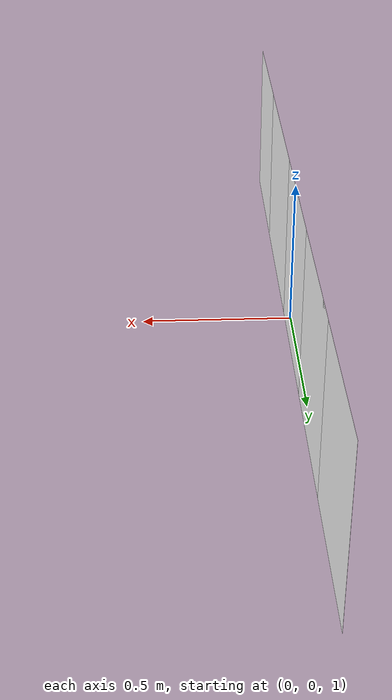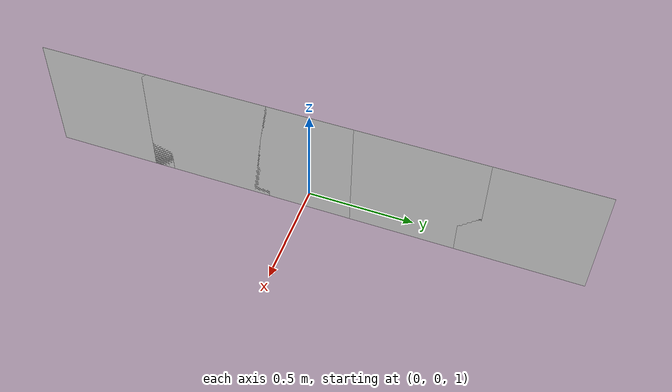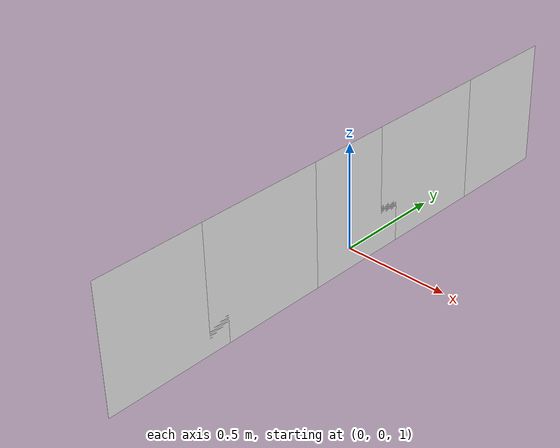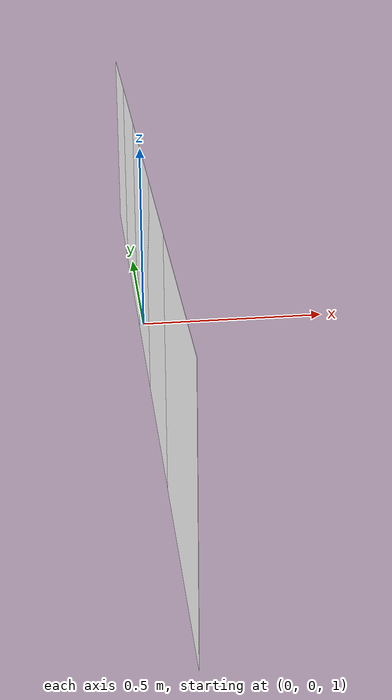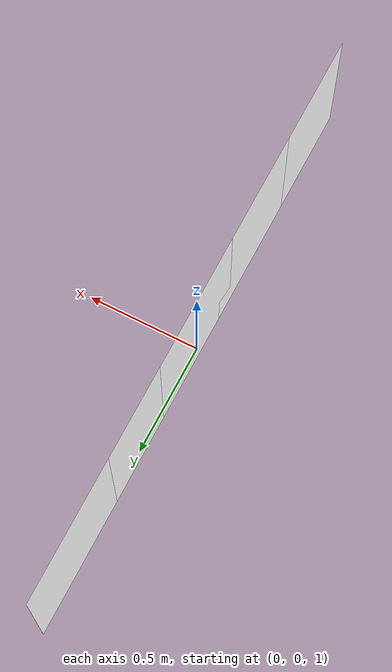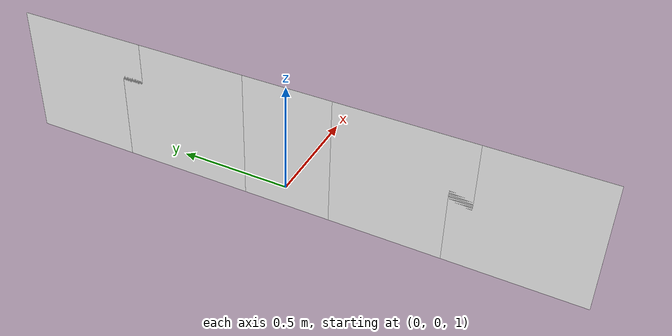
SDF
<?xml version="1.0" ?>
<sdf version="1.9">
  <world name="maze">
    <gravity>0 0 0</gravity>

    <physics type="ode">
      <max_step_size>0.004</max_step_size>
      <real_time_factor>1.0</real_time_factor>
      <real_time_update_rate>250</real_time_update_rate>
    </physics>

    <plugin filename="gz-sim-air-pressure-system" name="gz::sim::systems::AirPressure"/>
    <plugin filename="gz-sim-magnetometer-system" name="gz::sim::systems::Magnetometer"/>
    <plugin filename="gz-sim-physics-system" name="gz::sim::systems::Physics"/>
    <plugin filename="gz-sim-user-commands-system" name="gz::sim::systems::UserCommands"/>
    <plugin filename="gz-sim-scene-broadcaster-system" name="gz::sim::systems::SceneBroadcaster"/>
    <plugin filename="gz-sim-sensors-system" name="gz::sim::systems::Sensors">
      <render_engine>ogre2</render_engine>
    </plugin>
    <plugin filename="gz-sim-imu-system" name="gz::sim::systems::Imu"/>
    <plugin filename="gz-sim-navsat-system" name="gz::sim::systems::NavSat"/>
    <plugin filename="gz-sim-contact-system" name="gz::sim::systems::Contact"/>

    <scene>
      <ambient>0.7 0.7 0.7 1.0</ambient>
      <background>0.95 0.95 0.95 1.0</background>
    </scene>

    <light name="sun" type="directional">
      <cast_shadows>false</cast_shadows>
      <pose>0 0 10 0 0 0</pose>
      <diffuse>0.9 0.9 0.9 1</diffuse>
      <specular>0.1 0.1 0.1 1</specular>
      <direction>-0.4 0.1 -1.0</direction>
    </light>

    <model name="aruco_wall">
      <static>true</static>

      <link name="marker_0">
        <pose>0 -1.0 1.2 0 -1.5708 0</pose>
        <visual name="visual">
          <geometry>
            <plane>
              <size>0.6 0.6</size>
            </plane>
          </geometry>
          <material>
            <diffuse>1 1 1 1</diffuse>
            <pbr>
              <metal>
                <albedo_map>file:///home/telemaque/ros_ws/drone/src/drone_bringup/models/aruco_marker/materials/textures/marker_0.png</albedo_map>
              </metal>
            </pbr>
          </material>
        </visual>
      </link>

      <link name="marker_1">
        <pose>0 -0.5 1.2 0 -1.5708 0</pose>
        <visual name="visual">
          <geometry>
            <plane>
              <size>0.6 0.6</size>
            </plane>
          </geometry>
          <material>
            <diffuse>1 1 1 1</diffuse>
            <pbr>
              <metal>
                <albedo_map>file:///home/telemaque/ros_ws/drone/src/drone_bringup/models/aruco_marker/materials/textures/marker_1.png</albedo_map>
              </metal>
            </pbr>
          </material>
        </visual>
      </link>

      <link name="marker_2">
        <pose>0 0 1.2 0 -1.5708 0</pose>
        <visual name="visual">
          <geometry>
            <plane>
              <size>0.6 0.6</size>
            </plane>
          </geometry>
          <material>
            <diffuse>1 1 1 1</diffuse>
            <pbr>
              <metal>
                <albedo_map>file:///home/telemaque/ros_ws/drone/src/drone_bringup/models/aruco_marker/materials/textures/marker_2.png</albedo_map>
              </metal>
            </pbr>
          </material>
        </visual>
      </link>

      <link name="marker_3">
        <pose>0 0.5 1.2 0 -1.5708 0</pose>
        <visual name="visual">
          <geometry>
            <plane>
              <size>0.6 0.6</size>
            </plane>
          </geometry>
          <material>
            <diffuse>1 1 1 1</diffuse>
            <pbr>
              <metal>
                <albedo_map>file:///home/telemaque/ros_ws/drone/src/drone_bringup/models/aruco_marker/materials/textures/marker_3.png</albedo_map>
              </metal>
            </pbr>
          </material>
        </visual>
      </link>

      <link name="marker_4">
        <pose>0 1.0 1.2 0 -1.5708 0</pose>
        <visual name="visual">
          <geometry>
            <plane>
              <size>0.6 0.6</size>
            </plane>
          </geometry>
          <material>
            <diffuse>1 1 1 1</diffuse>
            <pbr>
              <metal>
                <albedo_map>file:///home/telemaque/ros_ws/drone/src/drone_bringup/models/aruco_marker/materials/textures/marker_4.png</albedo_map>
              </metal>
            </pbr>
          </material>
        </visual>
      </link>
    </model>
  </world>
</sdf>
